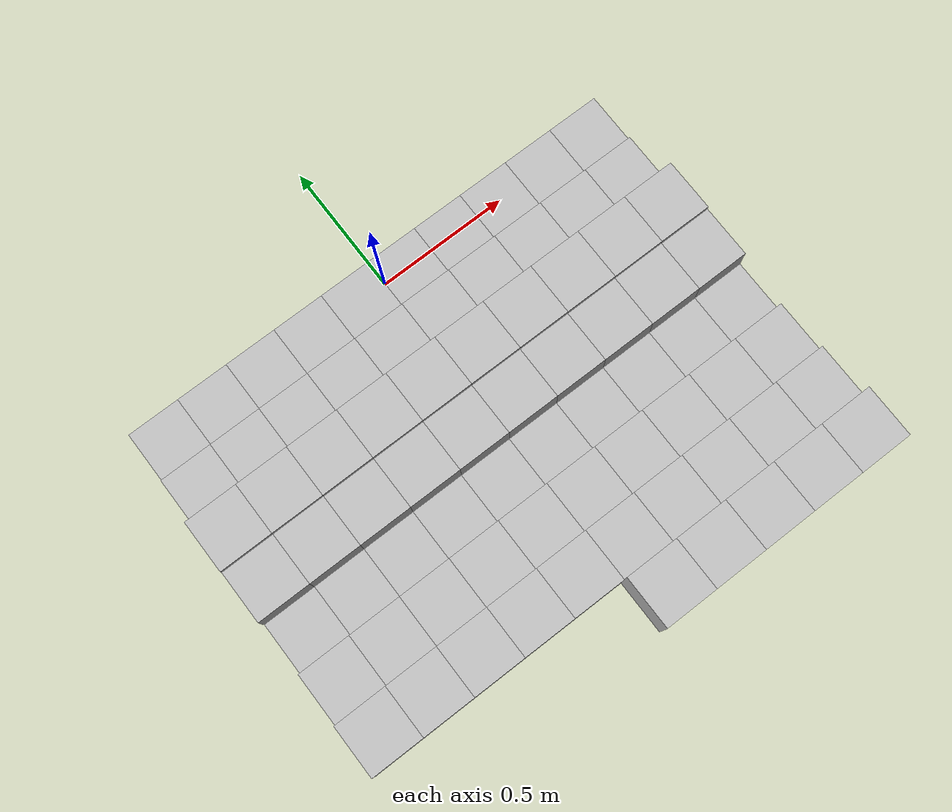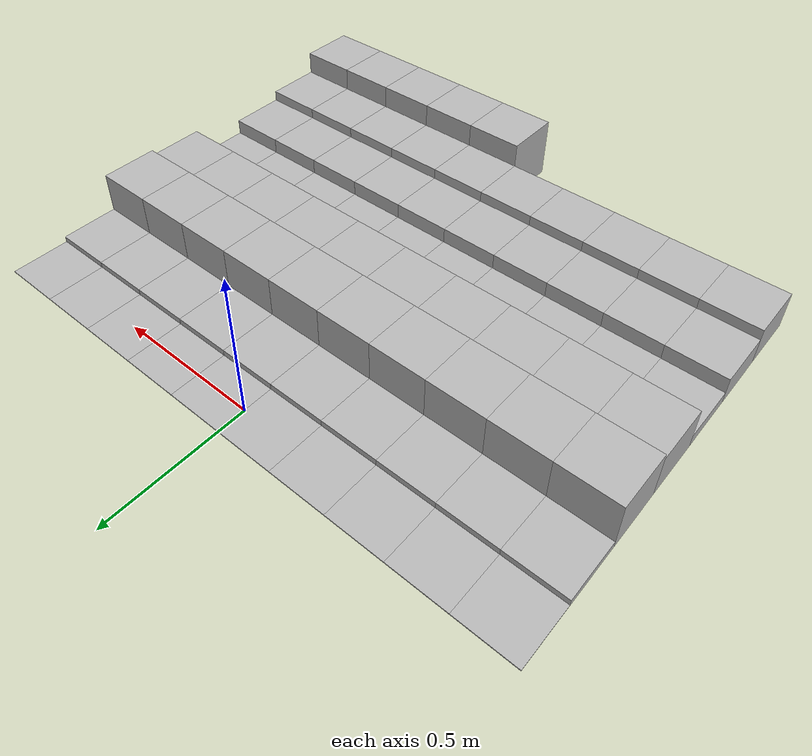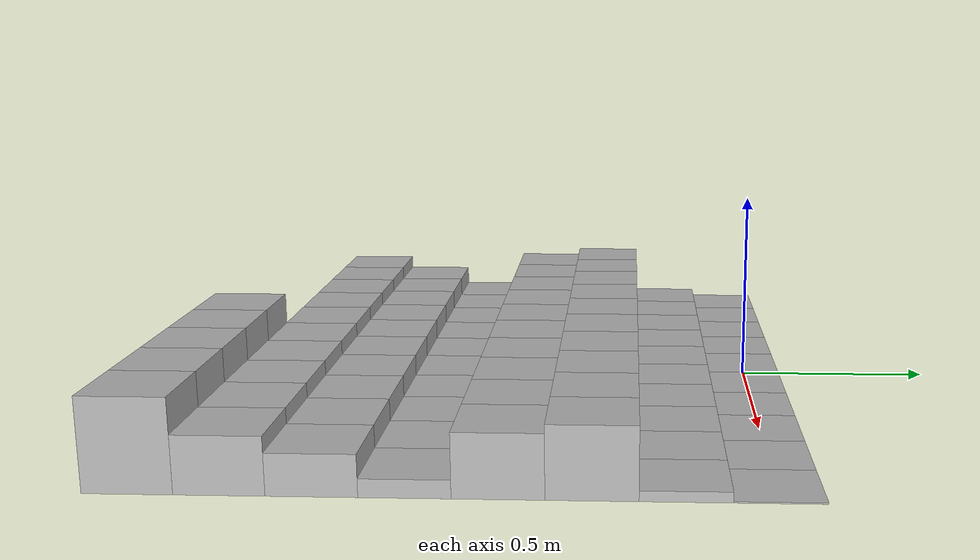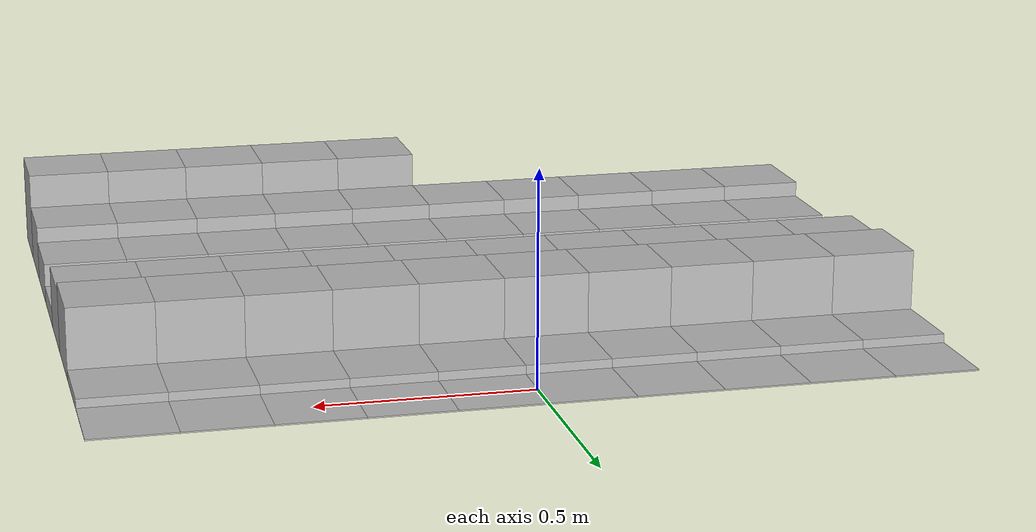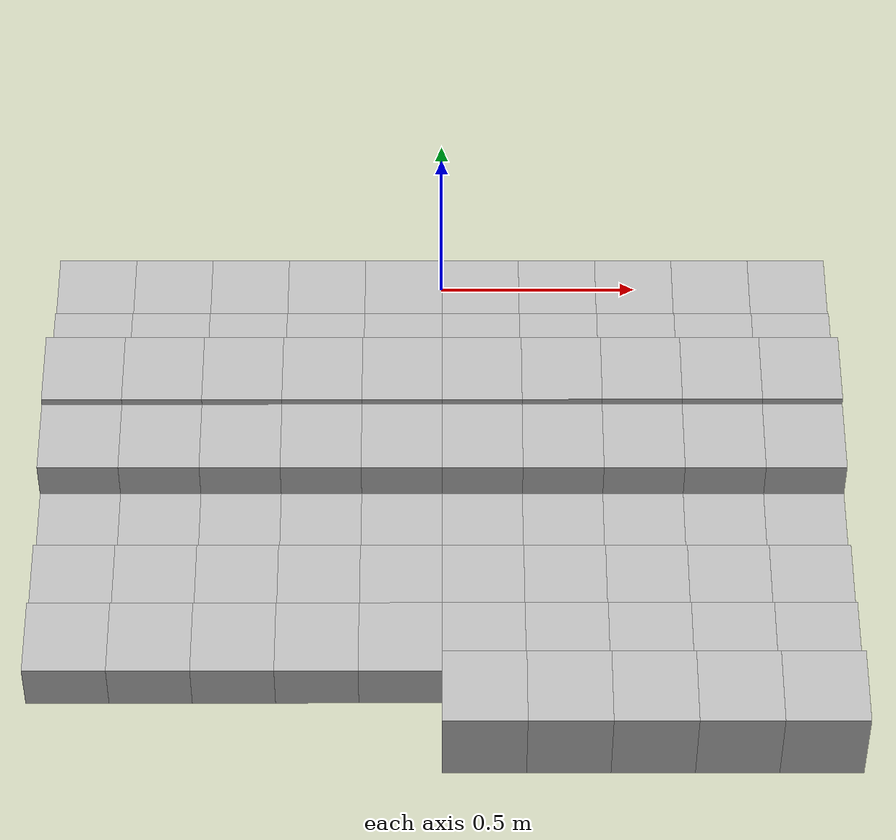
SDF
<sdf version="1.6">
 <model name="Terrain">
  <static>true</static>
  <link name="box_0_0">
   <pose>-0.9 0.0 0.00155699473406 0 0 0</pose>
   <inertial>
    <mass>1.0</mass>
    <inertia><ixx>0.0</ixx><ixy>0.0</ixy><ixz>0.0</ixz><iyy>0.0</iyy><iyz>0.0</iyz><izz>0.0</izz></inertia>
   </inertial>
   <collision name="collision"><geometry><box><size>0.2 0.2 0.00311398946811</size></box></geometry></collision>
   <visual name="visual"><geometry><box><size>0.2 0.2 0.00311398946811</size></box></geometry></visual>
  </link>
  <link name="box_0_1">
   <pose>-0.7 0.0 0.00155699473406 0 0 0</pose>
   <inertial>
    <mass>1.0</mass>
    <inertia><ixx>0.0</ixx><ixy>0.0</ixy><ixz>0.0</ixz><iyy>0.0</iyy><iyz>0.0</iyz><izz>0.0</izz></inertia>
   </inertial>
   <collision name="collision"><geometry><box><size>0.2 0.2 0.00311398946811</size></box></geometry></collision>
   <visual name="visual"><geometry><box><size>0.2 0.2 0.00311398946811</size></box></geometry></visual>
  </link>
  <link name="box_0_2">
   <pose>-0.5 0.0 0.00155699473406 0 0 0</pose>
   <inertial>
    <mass>1.0</mass>
    <inertia><ixx>0.0</ixx><ixy>0.0</ixy><ixz>0.0</ixz><iyy>0.0</iyy><iyz>0.0</iyz><izz>0.0</izz></inertia>
   </inertial>
   <collision name="collision"><geometry><box><size>0.2 0.2 0.00311398946811</size></box></geometry></collision>
   <visual name="visual"><geometry><box><size>0.2 0.2 0.00311398946811</size></box></geometry></visual>
  </link>
  <link name="box_0_3">
   <pose>-0.3 0.0 0.00155699473406 0 0 0</pose>
   <inertial>
    <mass>1.0</mass>
    <inertia><ixx>0.0</ixx><ixy>0.0</ixy><ixz>0.0</ixz><iyy>0.0</iyy><iyz>0.0</iyz><izz>0.0</izz></inertia>
   </inertial>
   <collision name="collision"><geometry><box><size>0.2 0.2 0.00311398946811</size></box></geometry></collision>
   <visual name="visual"><geometry><box><size>0.2 0.2 0.00311398946811</size></box></geometry></visual>
  </link>
  <link name="box_0_4">
   <pose>-0.1 0.0 0.00155699473406 0 0 0</pose>
   <inertial>
    <mass>1.0</mass>
    <inertia><ixx>0.0</ixx><ixy>0.0</ixy><ixz>0.0</ixz><iyy>0.0</iyy><iyz>0.0</iyz><izz>0.0</izz></inertia>
   </inertial>
   <collision name="collision"><geometry><box><size>0.2 0.2 0.00311398946811</size></box></geometry></collision>
   <visual name="visual"><geometry><box><size>0.2 0.2 0.00311398946811</size></box></geometry></visual>
  </link>
  <link name="box_0_5">
   <pose>0.1 0.0 0.00155699473406 0 0 0</pose>
   <inertial>
    <mass>1.0</mass>
    <inertia><ixx>0.0</ixx><ixy>0.0</ixy><ixz>0.0</ixz><iyy>0.0</iyy><iyz>0.0</iyz><izz>0.0</izz></inertia>
   </inertial>
   <collision name="collision"><geometry><box><size>0.2 0.2 0.00311398946811</size></box></geometry></collision>
   <visual name="visual"><geometry><box><size>0.2 0.2 0.00311398946811</size></box></geometry></visual>
  </link>
  <link name="box_0_6">
   <pose>0.3 0.0 0.00155699473406 0 0 0</pose>
   <inertial>
    <mass>1.0</mass>
    <inertia><ixx>0.0</ixx><ixy>0.0</ixy><ixz>0.0</ixz><iyy>0.0</iyy><iyz>0.0</iyz><izz>0.0</izz></inertia>
   </inertial>
   <collision name="collision"><geometry><box><size>0.2 0.2 0.00311398946811</size></box></geometry></collision>
   <visual name="visual"><geometry><box><size>0.2 0.2 0.00311398946811</size></box></geometry></visual>
  </link>
  <link name="box_0_7">
   <pose>0.5 0.0 0.00155699473406 0 0 0</pose>
   <inertial>
    <mass>1.0</mass>
    <inertia><ixx>0.0</ixx><ixy>0.0</ixy><ixz>0.0</ixz><iyy>0.0</iyy><iyz>0.0</iyz><izz>0.0</izz></inertia>
   </inertial>
   <collision name="collision"><geometry><box><size>0.2 0.2 0.00311398946811</size></box></geometry></collision>
   <visual name="visual"><geometry><box><size>0.2 0.2 0.00311398946811</size></box></geometry></visual>
  </link>
  <link name="box_0_8">
   <pose>0.7 0.0 0.00155699473406 0 0 0</pose>
   <inertial>
    <mass>1.0</mass>
    <inertia><ixx>0.0</ixx><ixy>0.0</ixy><ixz>0.0</ixz><iyy>0.0</iyy><iyz>0.0</iyz><izz>0.0</izz></inertia>
   </inertial>
   <collision name="collision"><geometry><box><size>0.2 0.2 0.00311398946811</size></box></geometry></collision>
   <visual name="visual"><geometry><box><size>0.2 0.2 0.00311398946811</size></box></geometry></visual>
  </link>
  <link name="box_0_9">
   <pose>0.9 0.0 0.00155699473406 0 0 0</pose>
   <inertial>
    <mass>1.0</mass>
    <inertia><ixx>0.0</ixx><ixy>0.0</ixy><ixz>0.0</ixz><iyy>0.0</iyy><iyz>0.0</iyz><izz>0.0</izz></inertia>
   </inertial>
   <collision name="collision"><geometry><box><size>0.2 0.2 0.00311398946811</size></box></geometry></collision>
   <visual name="visual"><geometry><box><size>0.2 0.2 0.00311398946811</size></box></geometry></visual>
  </link>
  <link name="box_1_0">
   <pose>-0.9 -0.2 0.012157828828 0 0 0</pose>
   <inertial>
    <mass>1.0</mass>
    <inertia><ixx>0.0</ixx><ixy>0.0</ixy><ixz>0.0</ixz><iyy>0.0</iyy><iyz>0.0</iyz><izz>0.0</izz></inertia>
   </inertial>
   <collision name="collision"><geometry><box><size>0.2 0.2 0.0243156576561</size></box></geometry></collision>
   <visual name="visual"><geometry><box><size>0.2 0.2 0.0243156576561</size></box></geometry></visual>
  </link>
  <link name="box_1_1">
   <pose>-0.7 -0.2 0.012157828828 0 0 0</pose>
   <inertial>
    <mass>1.0</mass>
    <inertia><ixx>0.0</ixx><ixy>0.0</ixy><ixz>0.0</ixz><iyy>0.0</iyy><iyz>0.0</iyz><izz>0.0</izz></inertia>
   </inertial>
   <collision name="collision"><geometry><box><size>0.2 0.2 0.0243156576561</size></box></geometry></collision>
   <visual name="visual"><geometry><box><size>0.2 0.2 0.0243156576561</size></box></geometry></visual>
  </link>
  <link name="box_1_2">
   <pose>-0.5 -0.2 0.012157828828 0 0 0</pose>
   <inertial>
    <mass>1.0</mass>
    <inertia><ixx>0.0</ixx><ixy>0.0</ixy><ixz>0.0</ixz><iyy>0.0</iyy><iyz>0.0</iyz><izz>0.0</izz></inertia>
   </inertial>
   <collision name="collision"><geometry><box><size>0.2 0.2 0.0243156576561</size></box></geometry></collision>
   <visual name="visual"><geometry><box><size>0.2 0.2 0.0243156576561</size></box></geometry></visual>
  </link>
  <link name="box_1_3">
   <pose>-0.3 -0.2 0.012157828828 0 0 0</pose>
   <inertial>
    <mass>1.0</mass>
    <inertia><ixx>0.0</ixx><ixy>0.0</ixy><ixz>0.0</ixz><iyy>0.0</iyy><iyz>0.0</iyz><izz>0.0</izz></inertia>
   </inertial>
   <collision name="collision"><geometry><box><size>0.2 0.2 0.0243156576561</size></box></geometry></collision>
   <visual name="visual"><geometry><box><size>0.2 0.2 0.0243156576561</size></box></geometry></visual>
  </link>
  <link name="box_1_4">
   <pose>-0.1 -0.2 0.012157828828 0 0 0</pose>
   <inertial>
    <mass>1.0</mass>
    <inertia><ixx>0.0</ixx><ixy>0.0</ixy><ixz>0.0</ixz><iyy>0.0</iyy><iyz>0.0</iyz><izz>0.0</izz></inertia>
   </inertial>
   <collision name="collision"><geometry><box><size>0.2 0.2 0.0243156576561</size></box></geometry></collision>
   <visual name="visual"><geometry><box><size>0.2 0.2 0.0243156576561</size></box></geometry></visual>
  </link>
  <link name="box_1_5">
   <pose>0.1 -0.2 0.012157828828 0 0 0</pose>
   <inertial>
    <mass>1.0</mass>
    <inertia><ixx>0.0</ixx><ixy>0.0</ixy><ixz>0.0</ixz><iyy>0.0</iyy><iyz>0.0</iyz><izz>0.0</izz></inertia>
   </inertial>
   <collision name="collision"><geometry><box><size>0.2 0.2 0.0243156576561</size></box></geometry></collision>
   <visual name="visual"><geometry><box><size>0.2 0.2 0.0243156576561</size></box></geometry></visual>
  </link>
  <link name="box_1_6">
   <pose>0.3 -0.2 0.012157828828 0 0 0</pose>
   <inertial>
    <mass>1.0</mass>
    <inertia><ixx>0.0</ixx><ixy>0.0</ixy><ixz>0.0</ixz><iyy>0.0</iyy><iyz>0.0</iyz><izz>0.0</izz></inertia>
   </inertial>
   <collision name="collision"><geometry><box><size>0.2 0.2 0.0243156576561</size></box></geometry></collision>
   <visual name="visual"><geometry><box><size>0.2 0.2 0.0243156576561</size></box></geometry></visual>
  </link>
  <link name="box_1_7">
   <pose>0.5 -0.2 0.012157828828 0 0 0</pose>
   <inertial>
    <mass>1.0</mass>
    <inertia><ixx>0.0</ixx><ixy>0.0</ixy><ixz>0.0</ixz><iyy>0.0</iyy><iyz>0.0</iyz><izz>0.0</izz></inertia>
   </inertial>
   <collision name="collision"><geometry><box><size>0.2 0.2 0.0243156576561</size></box></geometry></collision>
   <visual name="visual"><geometry><box><size>0.2 0.2 0.0243156576561</size></box></geometry></visual>
  </link>
  <link name="box_1_8">
   <pose>0.7 -0.2 0.012157828828 0 0 0</pose>
   <inertial>
    <mass>1.0</mass>
    <inertia><ixx>0.0</ixx><ixy>0.0</ixy><ixz>0.0</ixz><iyy>0.0</iyy><iyz>0.0</iyz><izz>0.0</izz></inertia>
   </inertial>
   <collision name="collision"><geometry><box><size>0.2 0.2 0.0243156576561</size></box></geometry></collision>
   <visual name="visual"><geometry><box><size>0.2 0.2 0.0243156576561</size></box></geometry></visual>
  </link>
  <link name="box_1_9">
   <pose>0.9 -0.2 0.012157828828 0 0 0</pose>
   <inertial>
    <mass>1.0</mass>
    <inertia><ixx>0.0</ixx><ixy>0.0</ixy><ixz>0.0</ixz><iyy>0.0</iyy><iyz>0.0</iyz><izz>0.0</izz></inertia>
   </inertial>
   <collision name="collision"><geometry><box><size>0.2 0.2 0.0243156576561</size></box></geometry></collision>
   <visual name="visual"><geometry><box><size>0.2 0.2 0.0243156576561</size></box></geometry></visual>
  </link>
  <link name="box_2_0">
   <pose>-0.9 -0.4 0.0843452902133 0 0 0</pose>
   <inertial>
    <mass>1.0</mass>
    <inertia><ixx>0.0</ixx><ixy>0.0</ixy><ixz>0.0</ixz><iyy>0.0</iyy><iyz>0.0</iyz><izz>0.0</izz></inertia>
   </inertial>
   <collision name="collision"><geometry><box><size>0.2 0.2 0.168690580427</size></box></geometry></collision>
   <visual name="visual"><geometry><box><size>0.2 0.2 0.168690580427</size></box></geometry></visual>
  </link>
  <link name="box_2_1">
   <pose>-0.7 -0.4 0.0843452902133 0 0 0</pose>
   <inertial>
    <mass>1.0</mass>
    <inertia><ixx>0.0</ixx><ixy>0.0</ixy><ixz>0.0</ixz><iyy>0.0</iyy><iyz>0.0</iyz><izz>0.0</izz></inertia>
   </inertial>
   <collision name="collision"><geometry><box><size>0.2 0.2 0.168690580427</size></box></geometry></collision>
   <visual name="visual"><geometry><box><size>0.2 0.2 0.168690580427</size></box></geometry></visual>
  </link>
  <link name="box_2_2">
   <pose>-0.5 -0.4 0.0843452902133 0 0 0</pose>
   <inertial>
    <mass>1.0</mass>
    <inertia><ixx>0.0</ixx><ixy>0.0</ixy><ixz>0.0</ixz><iyy>0.0</iyy><iyz>0.0</iyz><izz>0.0</izz></inertia>
   </inertial>
   <collision name="collision"><geometry><box><size>0.2 0.2 0.168690580427</size></box></geometry></collision>
   <visual name="visual"><geometry><box><size>0.2 0.2 0.168690580427</size></box></geometry></visual>
  </link>
  <link name="box_2_3">
   <pose>-0.3 -0.4 0.0843452902133 0 0 0</pose>
   <inertial>
    <mass>1.0</mass>
    <inertia><ixx>0.0</ixx><ixy>0.0</ixy><ixz>0.0</ixz><iyy>0.0</iyy><iyz>0.0</iyz><izz>0.0</izz></inertia>
   </inertial>
   <collision name="collision"><geometry><box><size>0.2 0.2 0.168690580427</size></box></geometry></collision>
   <visual name="visual"><geometry><box><size>0.2 0.2 0.168690580427</size></box></geometry></visual>
  </link>
  <link name="box_2_4">
   <pose>-0.1 -0.4 0.0843452902133 0 0 0</pose>
   <inertial>
    <mass>1.0</mass>
    <inertia><ixx>0.0</ixx><ixy>0.0</ixy><ixz>0.0</ixz><iyy>0.0</iyy><iyz>0.0</iyz><izz>0.0</izz></inertia>
   </inertial>
   <collision name="collision"><geometry><box><size>0.2 0.2 0.168690580427</size></box></geometry></collision>
   <visual name="visual"><geometry><box><size>0.2 0.2 0.168690580427</size></box></geometry></visual>
  </link>
  <link name="box_2_5">
   <pose>0.1 -0.4 0.0843452902133 0 0 0</pose>
   <inertial>
    <mass>1.0</mass>
    <inertia><ixx>0.0</ixx><ixy>0.0</ixy><ixz>0.0</ixz><iyy>0.0</iyy><iyz>0.0</iyz><izz>0.0</izz></inertia>
   </inertial>
   <collision name="collision"><geometry><box><size>0.2 0.2 0.168690580427</size></box></geometry></collision>
   <visual name="visual"><geometry><box><size>0.2 0.2 0.168690580427</size></box></geometry></visual>
  </link>
  <link name="box_2_6">
   <pose>0.3 -0.4 0.0843452902133 0 0 0</pose>
   <inertial>
    <mass>1.0</mass>
    <inertia><ixx>0.0</ixx><ixy>0.0</ixy><ixz>0.0</ixz><iyy>0.0</iyy><iyz>0.0</iyz><izz>0.0</izz></inertia>
   </inertial>
   <collision name="collision"><geometry><box><size>0.2 0.2 0.168690580427</size></box></geometry></collision>
   <visual name="visual"><geometry><box><size>0.2 0.2 0.168690580427</size></box></geometry></visual>
  </link>
  <link name="box_2_7">
   <pose>0.5 -0.4 0.0843452902133 0 0 0</pose>
   <inertial>
    <mass>1.0</mass>
    <inertia><ixx>0.0</ixx><ixy>0.0</ixy><ixz>0.0</ixz><iyy>0.0</iyy><iyz>0.0</iyz><izz>0.0</izz></inertia>
   </inertial>
   <collision name="collision"><geometry><box><size>0.2 0.2 0.168690580427</size></box></geometry></collision>
   <visual name="visual"><geometry><box><size>0.2 0.2 0.168690580427</size></box></geometry></visual>
  </link>
  <link name="box_2_8">
   <pose>0.7 -0.4 0.0843452902133 0 0 0</pose>
   <inertial>
    <mass>1.0</mass>
    <inertia><ixx>0.0</ixx><ixy>0.0</ixy><ixz>0.0</ixz><iyy>0.0</iyy><iyz>0.0</iyz><izz>0.0</izz></inertia>
   </inertial>
   <collision name="collision"><geometry><box><size>0.2 0.2 0.168690580427</size></box></geometry></collision>
   <visual name="visual"><geometry><box><size>0.2 0.2 0.168690580427</size></box></geometry></visual>
  </link>
  <link name="box_2_9">
   <pose>0.9 -0.4 0.0843452902133 0 0 0</pose>
   <inertial>
    <mass>1.0</mass>
    <inertia><ixx>0.0</ixx><ixy>0.0</ixy><ixz>0.0</ixz><iyy>0.0</iyy><iyz>0.0</iyz><izz>0.0</izz></inertia>
   </inertial>
   <collision name="collision"><geometry><box><size>0.2 0.2 0.168690580427</size></box></geometry></collision>
   <visual name="visual"><geometry><box><size>0.2 0.2 0.168690580427</size></box></geometry></visual>
  </link>
  <link name="box_3_0">
   <pose>-0.9 -0.6 0.0744343411689 0 0 0</pose>
   <inertial>
    <mass>1.0</mass>
    <inertia><ixx>0.0</ixx><ixy>0.0</ixy><ixz>0.0</ixz><iyy>0.0</iyy><iyz>0.0</iyz><izz>0.0</izz></inertia>
   </inertial>
   <collision name="collision"><geometry><box><size>0.2 0.2 0.148868682338</size></box></geometry></collision>
   <visual name="visual"><geometry><box><size>0.2 0.2 0.148868682338</size></box></geometry></visual>
  </link>
  <link name="box_3_1">
   <pose>-0.7 -0.6 0.0744343411689 0 0 0</pose>
   <inertial>
    <mass>1.0</mass>
    <inertia><ixx>0.0</ixx><ixy>0.0</ixy><ixz>0.0</ixz><iyy>0.0</iyy><iyz>0.0</iyz><izz>0.0</izz></inertia>
   </inertial>
   <collision name="collision"><geometry><box><size>0.2 0.2 0.148868682338</size></box></geometry></collision>
   <visual name="visual"><geometry><box><size>0.2 0.2 0.148868682338</size></box></geometry></visual>
  </link>
  <link name="box_3_2">
   <pose>-0.5 -0.6 0.0744343411689 0 0 0</pose>
   <inertial>
    <mass>1.0</mass>
    <inertia><ixx>0.0</ixx><ixy>0.0</ixy><ixz>0.0</ixz><iyy>0.0</iyy><iyz>0.0</iyz><izz>0.0</izz></inertia>
   </inertial>
   <collision name="collision"><geometry><box><size>0.2 0.2 0.148868682338</size></box></geometry></collision>
   <visual name="visual"><geometry><box><size>0.2 0.2 0.148868682338</size></box></geometry></visual>
  </link>
  <link name="box_3_3">
   <pose>-0.3 -0.6 0.0744343411689 0 0 0</pose>
   <inertial>
    <mass>1.0</mass>
    <inertia><ixx>0.0</ixx><ixy>0.0</ixy><ixz>0.0</ixz><iyy>0.0</iyy><iyz>0.0</iyz><izz>0.0</izz></inertia>
   </inertial>
   <collision name="collision"><geometry><box><size>0.2 0.2 0.148868682338</size></box></geometry></collision>
   <visual name="visual"><geometry><box><size>0.2 0.2 0.148868682338</size></box></geometry></visual>
  </link>
  <link name="box_3_4">
   <pose>-0.1 -0.6 0.0744343411689 0 0 0</pose>
   <inertial>
    <mass>1.0</mass>
    <inertia><ixx>0.0</ixx><ixy>0.0</ixy><ixz>0.0</ixz><iyy>0.0</iyy><iyz>0.0</iyz><izz>0.0</izz></inertia>
   </inertial>
   <collision name="collision"><geometry><box><size>0.2 0.2 0.148868682338</size></box></geometry></collision>
   <visual name="visual"><geometry><box><size>0.2 0.2 0.148868682338</size></box></geometry></visual>
  </link>
  <link name="box_3_5">
   <pose>0.1 -0.6 0.0744343411689 0 0 0</pose>
   <inertial>
    <mass>1.0</mass>
    <inertia><ixx>0.0</ixx><ixy>0.0</ixy><ixz>0.0</ixz><iyy>0.0</iyy><iyz>0.0</iyz><izz>0.0</izz></inertia>
   </inertial>
   <collision name="collision"><geometry><box><size>0.2 0.2 0.148868682338</size></box></geometry></collision>
   <visual name="visual"><geometry><box><size>0.2 0.2 0.148868682338</size></box></geometry></visual>
  </link>
  <link name="box_3_6">
   <pose>0.3 -0.6 0.0744343411689 0 0 0</pose>
   <inertial>
    <mass>1.0</mass>
    <inertia><ixx>0.0</ixx><ixy>0.0</ixy><ixz>0.0</ixz><iyy>0.0</iyy><iyz>0.0</iyz><izz>0.0</izz></inertia>
   </inertial>
   <collision name="collision"><geometry><box><size>0.2 0.2 0.148868682338</size></box></geometry></collision>
   <visual name="visual"><geometry><box><size>0.2 0.2 0.148868682338</size></box></geometry></visual>
  </link>
  <link name="box_3_7">
   <pose>0.5 -0.6 0.0744343411689 0 0 0</pose>
   <inertial>
    <mass>1.0</mass>
    <inertia><ixx>0.0</ixx><ixy>0.0</ixy><ixz>0.0</ixz><iyy>0.0</iyy><iyz>0.0</iyz><izz>0.0</izz></inertia>
   </inertial>
   <collision name="collision"><geometry><box><size>0.2 0.2 0.148868682338</size></box></geometry></collision>
   <visual name="visual"><geometry><box><size>0.2 0.2 0.148868682338</size></box></geometry></visual>
  </link>
  <link name="box_3_8">
   <pose>0.7 -0.6 0.0744343411689 0 0 0</pose>
   <inertial>
    <mass>1.0</mass>
    <inertia><ixx>0.0</ixx><ixy>0.0</ixy><ixz>0.0</ixz><iyy>0.0</iyy><iyz>0.0</iyz><izz>0.0</izz></inertia>
   </inertial>
   <collision name="collision"><geometry><box><size>0.2 0.2 0.148868682338</size></box></geometry></collision>
   <visual name="visual"><geometry><box><size>0.2 0.2 0.148868682338</size></box></geometry></visual>
  </link>
  <link name="box_3_9">
   <pose>0.9 -0.6 0.0744343411689 0 0 0</pose>
   <inertial>
    <mass>1.0</mass>
    <inertia><ixx>0.0</ixx><ixy>0.0</ixy><ixz>0.0</ixz><iyy>0.0</iyy><iyz>0.0</iyz><izz>0.0</izz></inertia>
   </inertial>
   <collision name="collision"><geometry><box><size>0.2 0.2 0.148868682338</size></box></geometry></collision>
   <visual name="visual"><geometry><box><size>0.2 0.2 0.148868682338</size></box></geometry></visual>
  </link>
  <link name="box_4_0">
   <pose>-0.9 -0.8 0.0211775174678 0 0 0</pose>
   <inertial>
    <mass>1.0</mass>
    <inertia><ixx>0.0</ixx><ixy>0.0</ixy><ixz>0.0</ixz><iyy>0.0</iyy><iyz>0.0</iyz><izz>0.0</izz></inertia>
   </inertial>
   <collision name="collision"><geometry><box><size>0.2 0.2 0.0423550349355</size></box></geometry></collision>
   <visual name="visual"><geometry><box><size>0.2 0.2 0.0423550349355</size></box></geometry></visual>
  </link>
  <link name="box_4_1">
   <pose>-0.7 -0.8 0.0211775174678 0 0 0</pose>
   <inertial>
    <mass>1.0</mass>
    <inertia><ixx>0.0</ixx><ixy>0.0</ixy><ixz>0.0</ixz><iyy>0.0</iyy><iyz>0.0</iyz><izz>0.0</izz></inertia>
   </inertial>
   <collision name="collision"><geometry><box><size>0.2 0.2 0.0423550349355</size></box></geometry></collision>
   <visual name="visual"><geometry><box><size>0.2 0.2 0.0423550349355</size></box></geometry></visual>
  </link>
  <link name="box_4_2">
   <pose>-0.5 -0.8 0.0211775174678 0 0 0</pose>
   <inertial>
    <mass>1.0</mass>
    <inertia><ixx>0.0</ixx><ixy>0.0</ixy><ixz>0.0</ixz><iyy>0.0</iyy><iyz>0.0</iyz><izz>0.0</izz></inertia>
   </inertial>
   <collision name="collision"><geometry><box><size>0.2 0.2 0.0423550349355</size></box></geometry></collision>
   <visual name="visual"><geometry><box><size>0.2 0.2 0.0423550349355</size></box></geometry></visual>
  </link>
  <link name="box_4_3">
   <pose>-0.3 -0.8 0.0211775174678 0 0 0</pose>
   <inertial>
    <mass>1.0</mass>
    <inertia><ixx>0.0</ixx><ixy>0.0</ixy><ixz>0.0</ixz><iyy>0.0</iyy><iyz>0.0</iyz><izz>0.0</izz></inertia>
   </inertial>
   <collision name="collision"><geometry><box><size>0.2 0.2 0.0423550349355</size></box></geometry></collision>
   <visual name="visual"><geometry><box><size>0.2 0.2 0.0423550349355</size></box></geometry></visual>
  </link>
  <link name="box_4_4">
   <pose>-0.1 -0.8 0.0211775174678 0 0 0</pose>
   <inertial>
    <mass>1.0</mass>
    <inertia><ixx>0.0</ixx><ixy>0.0</ixy><ixz>0.0</ixz><iyy>0.0</iyy><iyz>0.0</iyz><izz>0.0</izz></inertia>
   </inertial>
   <collision name="collision"><geometry><box><size>0.2 0.2 0.0423550349355</size></box></geometry></collision>
   <visual name="visual"><geometry><box><size>0.2 0.2 0.0423550349355</size></box></geometry></visual>
  </link>
  <link name="box_4_5">
   <pose>0.1 -0.8 0.0211775174678 0 0 0</pose>
   <inertial>
    <mass>1.0</mass>
    <inertia><ixx>0.0</ixx><ixy>0.0</ixy><ixz>0.0</ixz><iyy>0.0</iyy><iyz>0.0</iyz><izz>0.0</izz></inertia>
   </inertial>
   <collision name="collision"><geometry><box><size>0.2 0.2 0.0423550349355</size></box></geometry></collision>
   <visual name="visual"><geometry><box><size>0.2 0.2 0.0423550349355</size></box></geometry></visual>
  </link>
  <link name="box_4_6">
   <pose>0.3 -0.8 0.0211775174678 0 0 0</pose>
   <inertial>
    <mass>1.0</mass>
    <inertia><ixx>0.0</ixx><ixy>0.0</ixy><ixz>0.0</ixz><iyy>0.0</iyy><iyz>0.0</iyz><izz>0.0</izz></inertia>
   </inertial>
   <collision name="collision"><geometry><box><size>0.2 0.2 0.0423550349355</size></box></geometry></collision>
   <visual name="visual"><geometry><box><size>0.2 0.2 0.0423550349355</size></box></geometry></visual>
  </link>
  <link name="box_4_7">
   <pose>0.5 -0.8 0.0211775174678 0 0 0</pose>
   <inertial>
    <mass>1.0</mass>
    <inertia><ixx>0.0</ixx><ixy>0.0</ixy><ixz>0.0</ixz><iyy>0.0</iyy><iyz>0.0</iyz><izz>0.0</izz></inertia>
   </inertial>
   <collision name="collision"><geometry><box><size>0.2 0.2 0.0423550349355</size></box></geometry></collision>
   <visual name="visual"><geometry><box><size>0.2 0.2 0.0423550349355</size></box></geometry></visual>
  </link>
  <link name="box_4_8">
   <pose>0.7 -0.8 0.0211775174678 0 0 0</pose>
   <inertial>
    <mass>1.0</mass>
    <inertia><ixx>0.0</ixx><ixy>0.0</ixy><ixz>0.0</ixz><iyy>0.0</iyy><iyz>0.0</iyz><izz>0.0</izz></inertia>
   </inertial>
   <collision name="collision"><geometry><box><size>0.2 0.2 0.0423550349355</size></box></geometry></collision>
   <visual name="visual"><geometry><box><size>0.2 0.2 0.0423550349355</size></box></geometry></visual>
  </link>
  <link name="box_4_9">
   <pose>0.9 -0.8 0.0211775174678 0 0 0</pose>
   <inertial>
    <mass>1.0</mass>
    <inertia><ixx>0.0</ixx><ixy>0.0</ixy><ixz>0.0</ixz><iyy>0.0</iyy><iyz>0.0</iyz><izz>0.0</izz></inertia>
   </inertial>
   <collision name="collision"><geometry><box><size>0.2 0.2 0.0423550349355</size></box></geometry></collision>
   <visual name="visual"><geometry><box><size>0.2 0.2 0.0423550349355</size></box></geometry></visual>
  </link>
  <link name="box_5_0">
   <pose>-0.9 -1.0 0.048570471106 0 0 0</pose>
   <inertial>
    <mass>1.0</mass>
    <inertia><ixx>0.0</ixx><ixy>0.0</ixy><ixz>0.0</ixz><iyy>0.0</iyy><iyz>0.0</iyz><izz>0.0</izz></inertia>
   </inertial>
   <collision name="collision"><geometry><box><size>0.2 0.2 0.097140942212</size></box></geometry></collision>
   <visual name="visual"><geometry><box><size>0.2 0.2 0.097140942212</size></box></geometry></visual>
  </link>
  <link name="box_5_1">
   <pose>-0.7 -1.0 0.048570471106 0 0 0</pose>
   <inertial>
    <mass>1.0</mass>
    <inertia><ixx>0.0</ixx><ixy>0.0</ixy><ixz>0.0</ixz><iyy>0.0</iyy><iyz>0.0</iyz><izz>0.0</izz></inertia>
   </inertial>
   <collision name="collision"><geometry><box><size>0.2 0.2 0.097140942212</size></box></geometry></collision>
   <visual name="visual"><geometry><box><size>0.2 0.2 0.097140942212</size></box></geometry></visual>
  </link>
  <link name="box_5_2">
   <pose>-0.5 -1.0 0.048570471106 0 0 0</pose>
   <inertial>
    <mass>1.0</mass>
    <inertia><ixx>0.0</ixx><ixy>0.0</ixy><ixz>0.0</ixz><iyy>0.0</iyy><iyz>0.0</iyz><izz>0.0</izz></inertia>
   </inertial>
   <collision name="collision"><geometry><box><size>0.2 0.2 0.097140942212</size></box></geometry></collision>
   <visual name="visual"><geometry><box><size>0.2 0.2 0.097140942212</size></box></geometry></visual>
  </link>
  <link name="box_5_3">
   <pose>-0.3 -1.0 0.048570471106 0 0 0</pose>
   <inertial>
    <mass>1.0</mass>
    <inertia><ixx>0.0</ixx><ixy>0.0</ixy><ixz>0.0</ixz><iyy>0.0</iyy><iyz>0.0</iyz><izz>0.0</izz></inertia>
   </inertial>
   <collision name="collision"><geometry><box><size>0.2 0.2 0.097140942212</size></box></geometry></collision>
   <visual name="visual"><geometry><box><size>0.2 0.2 0.097140942212</size></box></geometry></visual>
  </link>
  <link name="box_5_4">
   <pose>-0.1 -1.0 0.048570471106 0 0 0</pose>
   <inertial>
    <mass>1.0</mass>
    <inertia><ixx>0.0</ixx><ixy>0.0</ixy><ixz>0.0</ixz><iyy>0.0</iyy><iyz>0.0</iyz><izz>0.0</izz></inertia>
   </inertial>
   <collision name="collision"><geometry><box><size>0.2 0.2 0.097140942212</size></box></geometry></collision>
   <visual name="visual"><geometry><box><size>0.2 0.2 0.097140942212</size></box></geometry></visual>
  </link>
  <link name="box_5_5">
   <pose>0.1 -1.0 0.048570471106 0 0 0</pose>
   <inertial>
    <mass>1.0</mass>
    <inertia><ixx>0.0</ixx><ixy>0.0</ixy><ixz>0.0</ixz><iyy>0.0</iyy><iyz>0.0</iyz><izz>0.0</izz></inertia>
   </inertial>
   <collision name="collision"><geometry><box><size>0.2 0.2 0.097140942212</size></box></geometry></collision>
   <visual name="visual"><geometry><box><size>0.2 0.2 0.097140942212</size></box></geometry></visual>
  </link>
  <link name="box_5_6">
   <pose>0.3 -1.0 0.048570471106 0 0 0</pose>
   <inertial>
    <mass>1.0</mass>
    <inertia><ixx>0.0</ixx><ixy>0.0</ixy><ixz>0.0</ixz><iyy>0.0</iyy><iyz>0.0</iyz><izz>0.0</izz></inertia>
   </inertial>
   <collision name="collision"><geometry><box><size>0.2 0.2 0.097140942212</size></box></geometry></collision>
   <visual name="visual"><geometry><box><size>0.2 0.2 0.097140942212</size></box></geometry></visual>
  </link>
  <link name="box_5_7">
   <pose>0.5 -1.0 0.048570471106 0 0 0</pose>
   <inertial>
    <mass>1.0</mass>
    <inertia><ixx>0.0</ixx><ixy>0.0</ixy><ixz>0.0</ixz><iyy>0.0</iyy><iyz>0.0</iyz><izz>0.0</izz></inertia>
   </inertial>
   <collision name="collision"><geometry><box><size>0.2 0.2 0.097140942212</size></box></geometry></collision>
   <visual name="visual"><geometry><box><size>0.2 0.2 0.097140942212</size></box></geometry></visual>
  </link>
  <link name="box_5_8">
   <pose>0.7 -1.0 0.048570471106 0 0 0</pose>
   <inertial>
    <mass>1.0</mass>
    <inertia><ixx>0.0</ixx><ixy>0.0</ixy><ixz>0.0</ixz><iyy>0.0</iyy><iyz>0.0</iyz><izz>0.0</izz></inertia>
   </inertial>
   <collision name="collision"><geometry><box><size>0.2 0.2 0.097140942212</size></box></geometry></collision>
   <visual name="visual"><geometry><box><size>0.2 0.2 0.097140942212</size></box></geometry></visual>
  </link>
  <link name="box_5_9">
   <pose>0.9 -1.0 0.048570471106 0 0 0</pose>
   <inertial>
    <mass>1.0</mass>
    <inertia><ixx>0.0</ixx><ixy>0.0</ixy><ixz>0.0</ixz><iyy>0.0</iyy><iyz>0.0</iyz><izz>0.0</izz></inertia>
   </inertial>
   <collision name="collision"><geometry><box><size>0.2 0.2 0.097140942212</size></box></geometry></collision>
   <visual name="visual"><geometry><box><size>0.2 0.2 0.097140942212</size></box></geometry></visual>
  </link>
  <link name="box_6_0">
   <pose>-0.9 -1.2 0.0674308307696 0 0 0</pose>
   <inertial>
    <mass>1.0</mass>
    <inertia><ixx>0.0</ixx><ixy>0.0</ixy><ixz>0.0</ixz><iyy>0.0</iyy><iyz>0.0</iyz><izz>0.0</izz></inertia>
   </inertial>
   <collision name="collision"><geometry><box><size>0.2 0.2 0.134861661539</size></box></geometry></collision>
   <visual name="visual"><geometry><box><size>0.2 0.2 0.134861661539</size></box></geometry></visual>
  </link>
  <link name="box_6_1">
   <pose>-0.7 -1.2 0.0674308307696 0 0 0</pose>
   <inertial>
    <mass>1.0</mass>
    <inertia><ixx>0.0</ixx><ixy>0.0</ixy><ixz>0.0</ixz><iyy>0.0</iyy><iyz>0.0</iyz><izz>0.0</izz></inertia>
   </inertial>
   <collision name="collision"><geometry><box><size>0.2 0.2 0.134861661539</size></box></geometry></collision>
   <visual name="visual"><geometry><box><size>0.2 0.2 0.134861661539</size></box></geometry></visual>
  </link>
  <link name="box_6_2">
   <pose>-0.5 -1.2 0.0674308307696 0 0 0</pose>
   <inertial>
    <mass>1.0</mass>
    <inertia><ixx>0.0</ixx><ixy>0.0</ixy><ixz>0.0</ixz><iyy>0.0</iyy><iyz>0.0</iyz><izz>0.0</izz></inertia>
   </inertial>
   <collision name="collision"><geometry><box><size>0.2 0.2 0.134861661539</size></box></geometry></collision>
   <visual name="visual"><geometry><box><size>0.2 0.2 0.134861661539</size></box></geometry></visual>
  </link>
  <link name="box_6_3">
   <pose>-0.3 -1.2 0.0674308307696 0 0 0</pose>
   <inertial>
    <mass>1.0</mass>
    <inertia><ixx>0.0</ixx><ixy>0.0</ixy><ixz>0.0</ixz><iyy>0.0</iyy><iyz>0.0</iyz><izz>0.0</izz></inertia>
   </inertial>
   <collision name="collision"><geometry><box><size>0.2 0.2 0.134861661539</size></box></geometry></collision>
   <visual name="visual"><geometry><box><size>0.2 0.2 0.134861661539</size></box></geometry></visual>
  </link>
  <link name="box_6_4">
   <pose>-0.1 -1.2 0.0674308307696 0 0 0</pose>
   <inertial>
    <mass>1.0</mass>
    <inertia><ixx>0.0</ixx><ixy>0.0</ixy><ixz>0.0</ixz><iyy>0.0</iyy><iyz>0.0</iyz><izz>0.0</izz></inertia>
   </inertial>
   <collision name="collision"><geometry><box><size>0.2 0.2 0.134861661539</size></box></geometry></collision>
   <visual name="visual"><geometry><box><size>0.2 0.2 0.134861661539</size></box></geometry></visual>
  </link>
  <link name="box_6_5">
   <pose>0.1 -1.2 0.0674308307696 0 0 0</pose>
   <inertial>
    <mass>1.0</mass>
    <inertia><ixx>0.0</ixx><ixy>0.0</ixy><ixz>0.0</ixz><iyy>0.0</iyy><iyz>0.0</iyz><izz>0.0</izz></inertia>
   </inertial>
   <collision name="collision"><geometry><box><size>0.2 0.2 0.134861661539</size></box></geometry></collision>
   <visual name="visual"><geometry><box><size>0.2 0.2 0.134861661539</size></box></geometry></visual>
  </link>
  <link name="box_6_6">
   <pose>0.3 -1.2 0.0674308307696 0 0 0</pose>
   <inertial>
    <mass>1.0</mass>
    <inertia><ixx>0.0</ixx><ixy>0.0</ixy><ixz>0.0</ixz><iyy>0.0</iyy><iyz>0.0</iyz><izz>0.0</izz></inertia>
   </inertial>
   <collision name="collision"><geometry><box><size>0.2 0.2 0.134861661539</size></box></geometry></collision>
   <visual name="visual"><geometry><box><size>0.2 0.2 0.134861661539</size></box></geometry></visual>
  </link>
  <link name="box_6_7">
   <pose>0.5 -1.2 0.0674308307696 0 0 0</pose>
   <inertial>
    <mass>1.0</mass>
    <inertia><ixx>0.0</ixx><ixy>0.0</ixy><ixz>0.0</ixz><iyy>0.0</iyy><iyz>0.0</iyz><izz>0.0</izz></inertia>
   </inertial>
   <collision name="collision"><geometry><box><size>0.2 0.2 0.134861661539</size></box></geometry></collision>
   <visual name="visual"><geometry><box><size>0.2 0.2 0.134861661539</size></box></geometry></visual>
  </link>
  <link name="box_6_8">
   <pose>0.7 -1.2 0.0674308307696 0 0 0</pose>
   <inertial>
    <mass>1.0</mass>
    <inertia><ixx>0.0</ixx><ixy>0.0</ixy><ixz>0.0</ixz><iyy>0.0</iyy><iyz>0.0</iyz><izz>0.0</izz></inertia>
   </inertial>
   <collision name="collision"><geometry><box><size>0.2 0.2 0.134861661539</size></box></geometry></collision>
   <visual name="visual"><geometry><box><size>0.2 0.2 0.134861661539</size></box></geometry></visual>
  </link>
  <link name="box_6_9">
   <pose>0.9 -1.2 0.0674308307696 0 0 0</pose>
   <inertial>
    <mass>1.0</mass>
    <inertia><ixx>0.0</ixx><ixy>0.0</ixy><ixz>0.0</ixz><iyy>0.0</iyy><iyz>0.0</iyz><izz>0.0</izz></inertia>
   </inertial>
   <collision name="collision"><geometry><box><size>0.2 0.2 0.134861661539</size></box></geometry></collision>
   <visual name="visual"><geometry><box><size>0.2 0.2 0.134861661539</size></box></geometry></visual>
  </link>
  <link name="box_7_5">
   <pose>0.1 -1.4 0.109469746065 0 0 0</pose>
   <inertial>
    <mass>1.0</mass>
    <inertia><ixx>0.0</ixx><ixy>0.0</ixy><ixz>0.0</ixz><iyy>0.0</iyy><iyz>0.0</iyz><izz>0.0</izz></inertia>
   </inertial>
   <collision name="collision"><geometry><box><size>0.2 0.2 0.21893949213</size></box></geometry></collision>
   <visual name="visual"><geometry><box><size>0.2 0.2 0.21893949213</size></box></geometry></visual>
  </link>
  <link name="box_7_6">
   <pose>0.3 -1.4 0.109469746065 0 0 0</pose>
   <inertial>
    <mass>1.0</mass>
    <inertia><ixx>0.0</ixx><ixy>0.0</ixy><ixz>0.0</ixz><iyy>0.0</iyy><iyz>0.0</iyz><izz>0.0</izz></inertia>
   </inertial>
   <collision name="collision"><geometry><box><size>0.2 0.2 0.21893949213</size></box></geometry></collision>
   <visual name="visual"><geometry><box><size>0.2 0.2 0.21893949213</size></box></geometry></visual>
  </link>
  <link name="box_7_7">
   <pose>0.5 -1.4 0.109469746065 0 0 0</pose>
   <inertial>
    <mass>1.0</mass>
    <inertia><ixx>0.0</ixx><ixy>0.0</ixy><ixz>0.0</ixz><iyy>0.0</iyy><iyz>0.0</iyz><izz>0.0</izz></inertia>
   </inertial>
   <collision name="collision"><geometry><box><size>0.2 0.2 0.21893949213</size></box></geometry></collision>
   <visual name="visual"><geometry><box><size>0.2 0.2 0.21893949213</size></box></geometry></visual>
  </link>
  <link name="box_7_8">
   <pose>0.7 -1.4 0.109469746065 0 0 0</pose>
   <inertial>
    <mass>1.0</mass>
    <inertia><ixx>0.0</ixx><ixy>0.0</ixy><ixz>0.0</ixz><iyy>0.0</iyy><iyz>0.0</iyz><izz>0.0</izz></inertia>
   </inertial>
   <collision name="collision"><geometry><box><size>0.2 0.2 0.21893949213</size></box></geometry></collision>
   <visual name="visual"><geometry><box><size>0.2 0.2 0.21893949213</size></box></geometry></visual>
  </link>
  <link name="box_7_9">
   <pose>0.9 -1.4 0.109469746065 0 0 0</pose>
   <inertial>
    <mass>1.0</mass>
    <inertia><ixx>0.0</ixx><ixy>0.0</ixy><ixz>0.0</ixz><iyy>0.0</iyy><iyz>0.0</iyz><izz>0.0</izz></inertia>
   </inertial>
   <collision name="collision"><geometry><box><size>0.2 0.2 0.21893949213</size></box></geometry></collision>
   <visual name="visual"><geometry><box><size>0.2 0.2 0.21893949213</size></box></geometry></visual>
  </link>
 </model>
</sdf>
